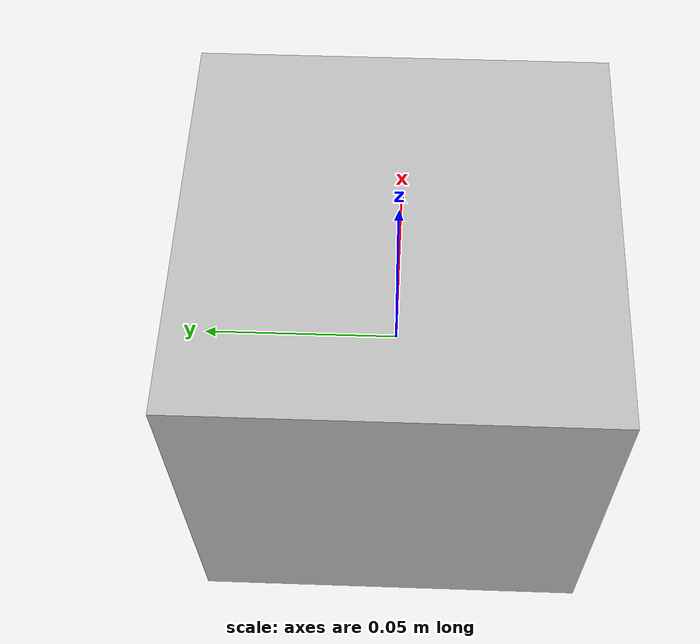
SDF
<?xml version="1.0" ?>
<sdf version="1.5">
  <model name="camera">
    <static>true</static>
    <pose>0 0 0 0 1.5 0</pose>
    <link name="link">
      <inertial>
        <mass>0.1</mass>
        <inertia>
          <ixx>0.000166667</ixx>
          <iyy>0.000166667</iyy>
          <izz>0.000166667</izz>
        </inertia>
      </inertial>
      <collision name="collision">
        <geometry>
          <box>
            <size>0.1 0.1 0.1</size>
          </box>
        </geometry>
      </collision>
      <visual name="visual">
        <geometry>
          <box>
            <size>0.1 0.1 0.1</size>
          </box>
        </geometry>
      </visual>
    <sensor type="camera" name="camera">
     <camera>
	  <save enabled="false">
              <path>/tmp/camera_save_tutorial</path>
            </save>
          <horizontal_fov>0.5</horizontal_fov>
          <image>
            <width>360</width>
            <height>360</height>
          </image>
          <clip>
            <near>0.1</near>
            <far>100</far>
          </clip>
        </camera>
        <always_on>1</always_on>
        <update_rate>10</update_rate>
        <visualize>1</visualize>
      <plugin name="camera_controller" filename="libgazebo_ros_camera.so">
        <alwaysOn>true</alwaysOn>
        <updateRate>0.0</updateRate>
        <cameraName>camera</cameraName>
        <imageTopicName>image_raw</imageTopicName>
        <cameraInfoTopicName>camera_info</cameraInfoTopicName>
        <frameName>camera_link_optical</frameName>
        <hackBaseline>0.0</hackBaseline>
        <distortionK1>0.0</distortionK1>
        <distortionK2>0.0</distortionK2>
        <distortionK3>0.0</distortionK3>
        <distortionT1>0.0</distortionT1>
        <distortionT2>0.0</distortionT2>
        <CxPrime>0</CxPrime>
        <Cx>0.0</Cx>
        <Cy>0.0</Cy>
        <focalLength>0.0</focalLength>
      </plugin>
    </sensor>
    </link>
  </model>
</sdf>
